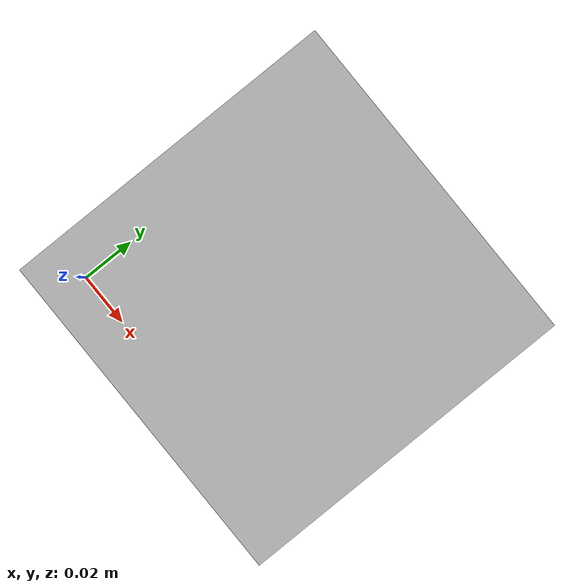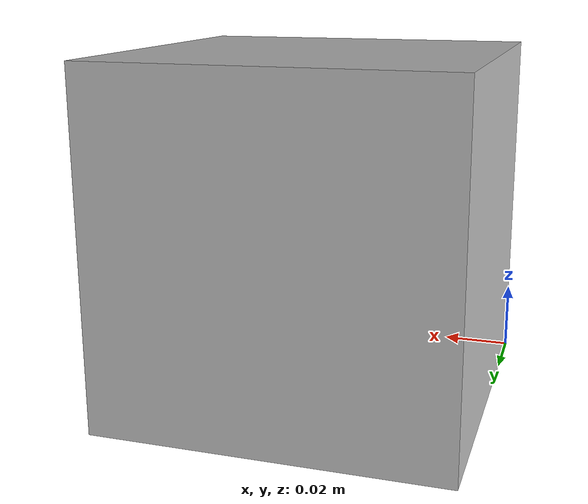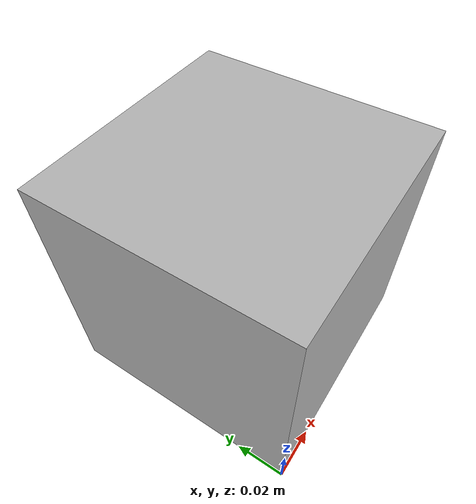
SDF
<?xml version="1.0" ?>
<sdf version="1.7">
  <world name="sim_world" xmlns:rmf="rmf">
    <physics name="10ms" type="ode">
      <max_step_size>0.01</max_step_size>
      <real_time_factor>1.0</real_time_factor>
    </physics>
    <plugin
      filename="libgz-sim-physics-system.so"
      name="gz::sim::systems::Physics">
    </plugin>
    <plugin
      filename="libgz-sim-user-commands-system.so"
      name="gz::sim::systems::UserCommands">
    </plugin>
    <plugin
      filename="libgz-sim-scene-broadcaster-system.so"
      name="gz::sim::systems::SceneBroadcaster">
    </plugin>
    <plugin
      filename="libdoor.so"
      name="door">
    </plugin>
    <plugin
      filename="liblift.so"
      name="lift">
    </plugin>
    <plugin
      filename="gz-sim-sensors-system"
      name="gz::sim::systems::Sensors">
      <render_engine>ogre2</render_engine>
    </plugin>

    <scene>
      <ambient>1 1 1</ambient>
      <background>0.8 0.8 0.8</background>
      <grid>false</grid>
    </scene>

    <gui fullscreen="0">

      <window>
        <width>1000</width>
        <height>845</height>
        <style
          material_theme="Light"
          material_primary="DeepOrange"
          material_accent="LightBlue"
          toolbar_color_light="#f3f3f3"
          toolbar_text_color_light="#111111"
          toolbar_color_dark="#414141"
          toolbar_text_color_dark="#f3f3f3"
          plugin_toolbar_color_light="#bbdefb"
          plugin_toolbar_text_color_light="#111111"
          plugin_toolbar_color_dark="#607d8b"
          plugin_toolbar_text_color_dark="#eeeeee"
        />
        <menus>
          <drawer default="false">
          </drawer>
        </menus>
      </window>

      <!-- GUI plugins -->
      <plugin filename="MinimalScene" name="3D View">
          <gz-gui>
              <title>3D View</title>
              <property type="bool" key="showTitleBar">false</property>
              <property type="string" key="state">docked</property>
          </gz-gui>
          <engine>ogre2</engine>
          <scene>scene</scene>
          <ambient_light>0.4 0.4 0.4</ambient_light>
          <background_color>0.8 0.8 0.8</background_color>
          <camera_pose>-6 0 6 0 0.5 0</camera_pose>
      </plugin>

      <!-- Plugins that add functionality to the scene -->
      <plugin filename="EntityContextMenuPlugin" name="Entity context menu">
          <gz-gui>
              <property key="state" type="string">floating</property>
              <property key="width" type="double">5</property>
              <property key="height" type="double">5</property>
              <property key="showTitleBar" type="bool">false</property>
          </gz-gui>
      </plugin>

      <plugin filename="GzSceneManager" name="Scene Manager">
          <gz-gui>
              <property key="resizable" type="bool">false</property>
              <property key="width" type="double">5</property>
              <property key="height" type="double">5</property>
              <property key="state" type="string">floating</property>
              <property key="showTitleBar" type="bool">false</property>
          </gz-gui>
      </plugin>

      <plugin filename="InteractiveViewControl" name="Interactive view control">
          <gz-gui>
              <property key="resizable" type="bool">false</property>
              <property key="width" type="double">5</property>
              <property key="height" type="double">5</property>
              <property key="state" type="string">floating</property>
              <property key="showTitleBar" type="bool">false</property>
          </gz-gui>
      </plugin>

      <plugin filename="CameraTracking" name="Camera Tracking">
          <gz-gui>
              <property key="resizable" type="bool">false</property>
              <property key="width" type="double">5</property>
              <property key="height" type="double">5</property>
              <property key="state" type="string">floating</property>
              <property key="showTitleBar" type="bool">false</property>
          </gz-gui>
      </plugin>

      <plugin filename="MarkerManager" name="Marker manager">
          <gz-gui>
              <property key="resizable" type="bool">false</property>
              <property key="width" type="double">5</property>
              <property key="height" type="double">5</property>
              <property key="state" type="string">floating</property>
              <property key="showTitleBar" type="bool">false</property>
          </gz-gui>
      </plugin>

      <plugin filename="SelectEntities" name="Select Entities">
          <gz-gui>
              <property key="resizable" type="bool">false</property>
              <property key="width" type="double">5</property>
              <property key="height" type="double">5</property>
              <property key="state" type="string">floating</property>
              <property key="showTitleBar" type="bool">false</property>
          </gz-gui>
      </plugin>

      <plugin filename="Spawn" name="Spawn Entities">
          <gz-gui>
              <property key="resizable" type="bool">false</property>
              <property key="width" type="double">5</property>
              <property key="height" type="double">5</property>
              <property key="state" type="string">floating</property>
              <property key="showTitleBar" type="bool">false</property>
          </gz-gui>
      </plugin>

      <plugin filename="VisualizationCapabilities" name="Visualization Capabilities">
          <gz-gui>
              <property key="resizable" type="bool">false</property>
              <property key="width" type="double">5</property>
              <property key="height" type="double">5</property>
              <property key="state" type="string">floating</property>
              <property key="showTitleBar" type="bool">false</property>
          </gz-gui>
      </plugin>

      <!-- World control -->
      <plugin filename="WorldControl" name="World control">
          <gz-gui>
              <title>World control</title>
              <property type="bool" key="showTitleBar">false</property>
              <property type="bool" key="resizable">false</property>
              <property type="double" key="height">72</property>
              <property type="double" key="z">1</property>
              <property type="string" key="state">floating</property>
              <anchors target="3D View">
                  <line own="left" target="left"/>
                  <line own="bottom" target="bottom"/>
              </anchors>
          </gz-gui>
          <play_pause>true</play_pause>
          <step>true</step>
          <start_paused>true</start_paused>
          <use_event>true</use_event>
      </plugin>

      <!-- World statistics -->
      <plugin filename="WorldStats" name="World stats">
          <gz-gui>
              <title>World stats</title>
              <property type="bool" key="showTitleBar">false</property>
              <property type="bool" key="resizable">false</property>
              <property type="double" key="height">110</property>
              <property type="double" key="width">290</property>
              <property type="double" key="z">1</property>
              <property type="string" key="state">floating</property>
              <anchors target="3D View">
                  <line own="right" target="right"/>
                  <line own="bottom" target="bottom"/>
              </anchors>
          </gz-gui>
          <sim_time>true</sim_time>
          <real_time>true</real_time>
          <real_time_factor>true</real_time_factor>
          <iterations>true</iterations>
      </plugin>

      <!-- Insert simple shapes -->
      <plugin filename="Shapes" name="Shapes">
          <gz-gui>
              <property key="resizable" type="bool">false</property>
              <property key="x" type="double">0</property>
              <property key="y" type="double">0</property>
              <property key="width" type="double">250</property>
              <property key="height" type="double">50</property>
              <property key="state" type="string">floating</property>
              <property key="showTitleBar" type="bool">false</property>
              <property key="cardBackground" type="string">#666666</property>
          </gz-gui>
      </plugin>

      <!-- Insert lights -->
      <plugin filename="Lights" name="Lights">
          <gz-gui>
              <property key="resizable" type="bool">false</property>
              <property key="x" type="double">250</property>
              <property key="y" type="double">0</property>
              <property key="width" type="double">150</property>
              <property key="height" type="double">50</property>
              <property key="state" type="string">floating</property>
              <property key="showTitleBar" type="bool">false</property>
              <property key="cardBackground" type="string">#666666</property>
          </gz-gui>
      </plugin>

      <!-- Translate / rotate -->
      <plugin filename="TransformControl" name="Transform control">
          <gz-gui>
              <property key="resizable" type="bool">false</property>
              <property key="x" type="double">0</property>
              <property key="y" type="double">50</property>
              <property key="width" type="double">250</property>
              <property key="height" type="double">50</property>
              <property key="state" type="string">floating</property>
              <property key="showTitleBar" type="bool">false</property>
              <property key="cardBackground" type="string">#777777</property>
          </gz-gui>
      </plugin>

      <!-- Screenshot -->
      <plugin filename="Screenshot" name="Screenshot">
          <gz-gui>
              <property key="resizable" type="bool">false</property>
              <property key="x" type="double">250</property>
              <property key="y" type="double">50</property>
              <property key="width" type="double">50</property>
              <property key="height" type="double">50</property>
              <property key="state" type="string">floating</property>
              <property key="showTitleBar" type="bool">false</property>
              <property key="cardBackground" type="string">#777777</property>
          </gz-gui>
      </plugin>

      <!-- Copy/Paste -->
      <plugin filename="CopyPaste" name="CopyPaste">
          <gz-gui>
              <property key="resizable" type="bool">false</property>
              <property key="x" type="double">300</property>
              <property key="y" type="double">50</property>
              <property key="width" type="double">100</property>
              <property key="height" type="double">50</property>
              <property key="state" type="string">floating</property>
              <property key="showTitleBar" type="bool">false</property>
              <property key="cardBackground" type="string">#777777</property>
          </gz-gui>
      </plugin>

      <!-- Inspector -->
      <plugin filename="ComponentInspector" name="Component inspector">
          <gz-gui>
              <property type="bool" key="showTitleBar">false</property>
              <property type="string" key="state">docked</property>
          </gz-gui>
      </plugin>

      <!-- Entity tree -->
      <plugin filename="EntityTree" name="Entity tree">
          <gz-gui>
              <property type="bool" key="showTitleBar">false</property>
              <property type="string" key="state">docked</property>
          </gz-gui>
      </plugin>

      <plugin filename="toggle_charging" name="toggle_charging"/>
    </gui>

    <light type="directional" name="sun">
      <cast_shadows>true</cast_shadows>
      <pose>0 0 10 0 0 0</pose>
      <diffuse>1 1 1 1</diffuse>
      <specular>0.2 0.2 0.2 1</specular>
      <attenuation>
        <range>1000</range>
        <constant>0.09</constant>
        <linear>0.001</linear>
        <quadratic>0.001</quadratic>
      </attenuation>
      <direction>-0.5 0.1 -0.9</direction>
    </light>
<model name="camera1">
    <link name="link">
    <pose>0.05 0.05 0.05 0 0 0</pose>
    <inertial>
        <mass>0.1</mass>
        <inertia>
        <ixx>0.000166667</ixx>
        <iyy>0.000166667</iyy>
        <izz>0.000166667</izz>
        </inertia>
    </inertial>
    <collision name="collision">
        <geometry>
        <box>
            <size>0.1 0.1 0.1</size>
        </box>
        </geometry>
    </collision>
    <visual name="visual">
        <geometry>
        <box>
            <size>0.1 0.1 0.1</size>
        </box>
        </geometry>
    </visual>
    <sensor name="camera" type="camera">
        <camera>
        <horizontal_fov>1.047</horizontal_fov>
        <image>
            <width>320</width>
            <height>240</height>
        </image>
        <clip>
            <near>0.1</near>
            <far>100</far>
        </clip>
        </camera>
        <always_on>1</always_on>
        <update_rate>30</update_rate>
        <visualize>true</visualize>
        <topic>camera</topic>
    </sensor>
    </link>
<plugin filename="random_camera_poser" name="random_camera_poser::RandomCameraPoser">
      <min_x>0</min_x>
      <max_x>25</max_x>
      <min_y>-15</min_y>
      <max_y>0</max_y>
      <min_z>0</min_z>
      <max_z>1</max_z>
    </plugin>
</model>

  </world>
</sdf>
